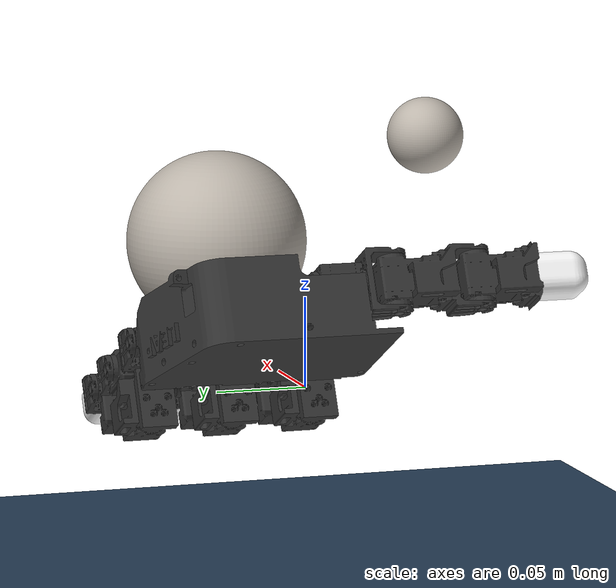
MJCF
<mujoco model="right_leap_hand scene">
  <include file="./leap_right_hand_eval.xml"/>

  <statistic center="0 0 0" extent="0.3"/>

  <visual>
    <rgba haze="0.15 0.25 0.35 1"/>
    <quality shadowsize="8192"/>
    <global azimuth="130" elevation="-40" offwidth="1280" offheight="960"/>
  </visual>

  <asset>
    <texture type="2d" name="ball_surface" file="./textures/softball_surface.png"/>
    <material name="obj_material" texture="ball_surface" texuniform="false"
      specular="0.3" shininess="0.4"/>
    <mesh name="ball_mesh" file="../../objects/uv_sphere.obj" scale="0.0485 0.0485 0.0485"/>
    <mesh name="ball_mesh_goal" file="../../objects/uv_sphere.obj" scale="0.0208 0.0208 0.0208"/>

    <texture type="2d" name="groundplane" builtin="checker" mark="edge" rgb1="0.2 0.3 0.4" rgb2="0.1 0.2 0.3"
      markrgb="0.8 0.8 0.8" width="300" height="300"/>
    <material name="groundplane" texture="groundplane" texuniform="true" texrepeat="5 5" reflectance="0."/>
  </asset>

  <worldbody>
    <light directional="true" ambient="0.2 0.2 0.2" diffuse="0.8 0.8 0.8"  castshadow="false" pos="0 1 4" dir="0 0 -1" name="light0"/>
    <camera name="demo-cam" pos="-0.003 -0.393 0.317" xyaxes="1.000 -0.000 0.000 0.000 0.462 0.887"/>

    <geom name="floor" pos="0 0 -0.1" size="0 0 0.05" type="plane" material="groundplane"/>

    <body name="goal" pos="0.005 -0.07 0.1353" quat="1 0 0 0" mocap="true">
      <geom name="goal_visual" type="mesh" mesh="ball_mesh_goal" material="obj_material"
        contype="0" conaffinity="0" density="0"/>
    </body>

    <body name="obj" pos="0 0.05 0.0835">
        <freejoint name="obj_joint"/>
        <geom name="obj" type="sphere" size="0.0485" material="obj_material"
              friction="0.5" mass="0.14" group="3"/>
        <!-- Visual-only textured sphere (contype/conaffinity 0, density 0). -->
        <geom name="obj_visual" type="mesh" mesh="ball_mesh" material="obj_material"
              contype="0" conaffinity="0" density="0"/>
    </body>

  </worldbody>
</mujoco>

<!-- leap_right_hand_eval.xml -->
<mujoco model="leap_rh">
  <compiler angle="radian" meshdir="./leap_hand/assets/"/>

  <!-- mesh assets -->
  <asset>
    <material name="black" rgba="0.2 0.2 0.2 1" />
    <material name="white" rgba="1 1 1 1" />

    <mesh name="palm" file="palm_right.obj"/>
    <mesh name="base" file="base.obj"/>
    <mesh name="proximal" file="proximal.obj"/>
    <mesh name="medial" file="medial.obj"/>
    <mesh name="distal" file="distal.obj"/>
    <mesh name="tip" file="tip.obj"/>
    <mesh name="thumb_base" file="thumb_base.obj"/>
    <mesh name="thumb_proximal" file="thumb_proximal.obj"/>
    <mesh name="thumb_distal" file="thumb_distal.obj"/>
    <mesh name="thumb_tip" file="thumb_tip.obj"/>
    <mesh name="tip_vis" file="tip_vis.obj"/>
    <mesh name="thumb_tip_vis" file="thumb_tip_vis.obj"/>
  </asset>

  <!-- defaults -->
  <default>
    <!-- constraint stiffness -->

    <!-- actuator defaults -->
    <position kp="3.0" kv="0.01" />
    <joint damping="0.3" armature="0.001"/>

    <!-- geom class defaults -->
    <default class="visual">
      <geom group="1" type="mesh" contype="0" conaffinity="0" density="0" material="black" />
    </default>
    <default class="collision">
      <geom material="black" group="3" />
    </default>
    <default class="tip">
      <geom type="mesh" mesh="tip" friction="0.5" material="white" group="3" />
    </default>
    <default class="thumb_tip">
      <geom type="mesh" mesh="thumb_tip" friction="0.5" material="white" group="3" />
    </default>
    <!-- Visual-only fingertip meshes: contype/conaffinity 0 + density 0 (never
    collide, carry no mass), group="1" so they render normally everywhere,
    matching the "visual" class convention above. -->
    <default class="tip_vis">
      <geom type="mesh" mesh="tip_vis" material="white" group="1" contype="0" conaffinity="0" density="0" />
    </default>
    <default class="thumb_tip_vis">
      <geom type="mesh" mesh="thumb_tip_vis" material="white" group="1" contype="0" conaffinity="0" density="0" />
    </default>

    <!-- joint class defaults -->
    <default class="mcp">
      <joint pos="0 0 0" axis="0 0 -1"
        limited="true" range="-0.0 2.23" />
      <position ctrlrange="-0.314 2.23" />
    </default>
    <default class="rot">
      <joint pos="0 0 0" axis="0 0 -1"
        limited="true" range="-1.047 1.047" />
      <position ctrlrange="-1.047 1.047" />
    </default>
    <default class="pip">
      <joint pos="0 0 0" axis="0 0 -1"
        limited="true" range="-0.506 1.885" />
      <position ctrlrange="-0.506 1.885" />
    </default>
    <default class="dip">
      <joint pos="0 0 0" axis="0 0 -1"
        limited="true" range="-0.366 2.042" />
      <position ctrlrange="-0.366 2.042" />
    </default>
    <default class="thumb_cmc">
      <joint pos="0 0 0" axis="0 0 -1"
        limited="true" range="-0.349 2.094" />
      <position ctrlrange="-0.349 2.094" />
    </default>
    <default class="thumb_axl">
      <joint pos="0 0 0" axis="0 0 -1"
        limited="true" range="-0.349 2.094" />
      <position ctrlrange="-0.349 2.094" />
    </default>
    <default class="thumb_mcp">
      <joint pos="0 0 0" axis="0 0 -1"
        limited="true" range="-0.47 2.443" />
      <position ctrlrange="-0.47 2.443" />
    </default>
    <default class="thumb_ipl">
      <joint pos="0 0 0" axis="0 0 -1"
        limited="true" range="-1.34 1.88" />
      <position ctrlrange="-1.34 1.88" />
    </default>
  </default>

  <!-- collision filtering -->
  <contact>
    <!-- filter the palm from all other finger bodies except the tips -->
    <exclude body1="palm" body2="if_bs" />
    <exclude body1="palm" body2="mf_bs" />
    <exclude body1="palm" body2="rf_bs" />
    <exclude body1="palm" body2="th_mp" />

    <exclude body1="palm" body2="if_px" />
    <exclude body1="palm" body2="mf_px" />
    <exclude body1="palm" body2="rf_px" />
    <exclude body1="palm" body2="th_bs" />

    <exclude body1="palm" body2="if_md" />
    <exclude body1="palm" body2="mf_md" />
    <exclude body1="palm" body2="rf_md" />
    <exclude body1="palm" body2="th_px" />

    <!-- none of the base fingertip geoms can touch each other -->
    <exclude body1="if_bs" body2="mf_bs" />
    <exclude body1="if_bs" body2="rf_bs" />
    <exclude body1="mf_bs" body2="rf_bs" />

    <exclude body1="th_mp" body2="if_bs" />
    <exclude body1="th_mp" body2="mf_bs" />
    <exclude body1="th_mp" body2="rf_bs" />
  </contact>

  <!-- actuators -->
  <actuator>
    <!-- index -->
    <position name="if_mcp_act" joint="if_mcp" class="mcp" />
    <position name="if_rot_act" joint="if_rot" class="rot" />
    <position name="if_pip_act" joint="if_pip" class="pip" />
    <position name="if_dip_act" joint="if_dip" class="dip" />

    <!-- middle -->
    <position name="mf_mcp_act" joint="mf_mcp" class="mcp" />
    <position name="mf_rot_act" joint="mf_rot" class="rot" />
    <position name="mf_pip_act" joint="mf_pip" class="pip" />
    <position name="mf_dip_act" joint="mf_dip" class="dip" />

    <!-- ring -->
    <position name="rf_mcp_act" joint="rf_mcp" class="mcp" />
    <position name="rf_rot_act" joint="rf_rot" class="rot" />
    <position name="rf_pip_act" joint="rf_pip" class="pip" />
    <position name="rf_dip_act" joint="rf_dip" class="dip" />

    <!-- thumb -->
    <position name="th_cmc_act" joint="th_cmc" class="thumb_cmc" />
    <position name="th_axl_act" joint="th_axl" class="thumb_axl" />
    <position name="th_mcp_act" joint="th_mcp" class="thumb_mcp" />
    <position name="th_ipl_act" joint="th_ipl" class="thumb_ipl" />
  </actuator>

  <!-- sensors -->
  <sensor>
    <!-- index -->
    <jointpos name="if_mcp_sensor" joint="if_mcp" />
    <jointpos name="if_rot_sensor" joint="if_rot" />
    <jointpos name="if_pip_sensor" joint="if_pip" />
    <jointpos name="if_dip_sensor" joint="if_dip" />

    <!-- middle -->
    <jointpos name="mf_mcp_sensor" joint="mf_mcp" />
    <jointpos name="mf_rot_sensor" joint="mf_rot" />
    <jointpos name="mf_pip_sensor" joint="mf_pip" />
    <jointpos name="mf_dip_sensor" joint="mf_dip" />

    <!-- ring -->
    <jointpos name="rf_mcp_sensor" joint="rf_mcp" />
    <jointpos name="rf_rot_sensor" joint="rf_rot" />
    <jointpos name="rf_pip_sensor" joint="rf_pip" />
    <jointpos name="rf_dip_sensor" joint="rf_dip" />

    <!-- thumb -->
    <jointpos name="th_cmc_sensor" joint="th_cmc" />
    <jointpos name="th_axl_sensor" joint="th_axl" />
    <jointpos name="th_mcp_sensor" joint="th_mcp" />
    <jointpos name="th_ipl_sensor" joint="th_ipl" />
  </sensor>

  <worldbody>
    <body name="palm" pos="0 0 0.01" quat="0 0.97236992  0 -0.23344536">
      <!-- palm -->
      <inertial pos="-0.049542 -0.042914 -0.010227" quat="0.565586 0.427629 -0.574956 0.408254" mass="0.237" diaginertia="0.000407345 0.000304759 0.000180736"/>
      <geom name="palm_visual" pos="-0.02 0.02575 -0.0347" quat="1 0 0 0" class="visual" mesh="palm"/>
      <geom name="palm_collision_1" size="0.011 0.013 0.017" pos="-0.009 0.008 -0.011" type="box" class="collision"/>
      <geom name="palm_collision_2" size="0.011 0.013 0.017" pos="-0.009 -0.037 -0.011" type="box" class="collision"/>
      <geom name="palm_collision_3" size="0.011 0.013 0.017" pos="-0.009 -0.082 -0.011" type="box" class="collision"/>
      <geom name="palm_collision_4" size="0.029 0.01 0.023" pos="-0.066 -0.078 -0.0115" quat="0.989016 0 0 -0.147806" type="box" class="collision"/>
      <geom name="palm_collision_5" size="0.01 0.06 0.015" pos="-0.03 -0.035 -0.003" type="box" class="collision"/>
      <geom name="palm_collision_6" size="0.005 0.06 0.01" pos="-0.032 -0.035 -0.024" quat="0.923956 0 0.382499 0" type="box" class="collision"/>
      <geom name="palm_collision_7" size="0.012 0.058 0.023" pos="-0.048 -0.033 -0.0115" type="box" class="collision"/>
      <geom name="palm_collision_8" size="0.022 0.026 0.023" pos="-0.078 -0.053 -0.0115" type="box" class="collision"/>
      <geom name="palm_collision_9" size="0.002 0.018 0.017" pos="-0.098 -0.009 -0.006" type="box" class="collision"/>
      <geom name="palm_collision_10" size="0.022 0.028 0.002" pos="-0.078 -0.003 0.01" type="box" class="collision"/>
      <site name="tag" pos="-0.067 -0.05 -0.035" rgba="0.5 0 0 0.8" quat="1 0 0 -1"/>

      <!-- index -->
        <body name="if_bs" pos="-0.007 0.023 -0.0187" quat="0.5 0.5 0.5 -0.5">
          <inertial pos="-0.022516 0.033882 0.016359" quat="0.388092 0.677951 -0.247713 0.573067"
            mass="0.044" diaginertia="1.74972e-05 1.61504e-05 7.21342e-06" />
          <joint name="if_mcp" class="mcp" />
          <geom name="if_bs_visual" pos="0.0084 0.0077 0.01465" quat="1 0 0 0" class="visual"
            mesh="base" />
          <geom name="if_bs_collision_1" size="0.01 0.003 0.017" pos="0 0.018 0.0147" type="box" class="collision" />
           <geom name="if_bs_collision_2" size="0.014 0.02 0.01" pos="-0.027 0.042 0.015"
          type="box" class="collision"/>
           <geom name="if_bs_collision_3" size="0.017 0.003 0.01" pos="-0.0262 0.02 0.0146"
          type="box" class="collision"/>
           <geom name="if_bs_collision_4" size="0.01 0.012 0.004" pos="-0.0295 0.035 0.029"
          type="box" class="collision"/>
           <geom name="if_bs_collision_5" size="0.007 0.01 0.002" pos="0 0.005 0.03"
          type="box" class="collision"/>
           <geom name="if_bs_collision_6" size="0.007 0.01 0.002" pos="0 0.005 -0.001"
          type="box" class="collision"/>

          <body name="if_px" pos="-0.0122 0.0381 0.0145" quat="0.500003 -0.5 -0.499997 0.5">
            <inertial pos="0.0075 -0.0002 -0.011" quat="0 0.707107 0 0.707107" mass="0.032"
              diaginertia="4.8853e-06 4.3733e-06 3.0933e-06" />
            <joint name="if_rot" class="rot" />
            <geom name="if_px_visual" pos="0.0096 0.0002 0.0007" quat="0.500003 -0.5 -0.5 -0.499997"
              class="visual" mesh="proximal" />
            <geom name="if_px_collision" size="0.017 0.013 0.011" pos="0.0075 -0.0002 -0.011"
              type="box" class="collision" />

            <body name="if_md" pos="0.015 0.0143 -0.013" quat="0.500003 0.5 -0.5 0.499997">
              <inertial pos="0.0054215 -0.029148 0.015" quat="0.687228 0.687228 0.166487 0.166487"
                mass="0.037" diaginertia="8.28004e-06 8.1598e-06 5.39516e-06" />
              <joint name="if_pip" class="pip" />
              <geom name="if_md_visual" pos="0.0211 -0.0084 0.0097" quat="2.67949e-08 -1 0 0"
                class="visual" mesh="medial" />
              <geom name="if_md_collision_1" size="0.008 0.003 0.013" pos="0 -0.02 0.015" type="box" class="collision" />
               <geom name="if_md_collision_2" size="0.01 0.002 0.017" pos="0 -0.016 0.015"
              type="box"  class="collision"/>
               <geom name="if_md_collision_3" size="0.007 0.01 0.002" pos="0 -0.0045 0.03"
              type="box" class="collision"/>
               <geom name="if_md_collision_4" size="0.007 0.01 0.002" pos="0 -0.0045 0"
              type="box" class="collision"/>
              <geom name="if_md_collision_5" size="0.017 0.011 0.013" pos="0.0075 -0.035 0.015"
                type="box" class="collision" />

              <body name="if_ds" pos="0 -0.0361 0.0002">
                <inertial pos="-0.0008794 -0.027019 0.014594"
                  quat="0.702905 0.710643 -0.0212937 -0.0214203" mass="0.016"
                  diaginertia="3.71863e-06 3.02396e-06 1.6518e-06" />
                <joint name="if_dip" class="dip" />
                <geom name="if_ds_visual" pos="0.0132 -0.0061 0.0144" quat="2.67949e-08 1 0 0"
                  class="visual" mesh="distal" />
                <geom name="if_ds_collision_1" size="0.01 0.003 0.015" pos="0 -0.017 0.015"
                  type="box" class="collision" />
                 <geom name="if_ds_collision_2" size="0.007 0.011 0.002" pos="0 -0.006 0.03"
                type="box"  class="collision"/>
                 <geom name="if_ds_collision_3" size="0.007 0.011 0.002" pos="0 -0.006 -0.001"
                type="box"  class="collision"/>

                <geom name="if_tip" class="tip" />
                <geom name="if_tip_vis" class="tip_vis" />
                <site name="if_tip" pos="0 -0.05 0.015" group="4"/>
              </body>

            </body>
          </body>
        </body>  <!--
        index -->

        <!-- middle -->
        <body name="mf_bs" pos="-0.0071 -0.0224 -0.0187" quat="0.500003 0.5 0.5 -0.499997">
          <inertial pos="-0.022516 0.033882 0.016359" quat="0.388092 0.677951 -0.247713 0.573067"
            mass="0.044" diaginertia="1.74972e-05 1.61504e-05 7.21342e-06" />
          <joint name="mf_mcp" class="mcp" />
          <geom name="mf_bs_visual" pos="0.0084 0.0077 0.01465" quat="1 0 0 0" class="visual"
            mesh="base" />
          <geom name="mf_bs_collision_1" size="0.01 0.003 0.017" pos="0 0.018 0.0147" type="box" class="collision" />
           <geom name="mf_bs_collision_2" size="0.014 0.02 0.01" pos="-0.027 0.042 0.015"
          type="box"  class="collision"/>
           <geom name="mf_bs_collision_3" size="0.017 0.003 0.01" pos="-0.0262 0.02 0.0146"
          type="box" class="collision"/>
           <geom name="mf_bs_collision_4" size="0.01 0.012 0.004" pos="-0.0295 0.035 0.029"
          type="box" class="collision"/>
           <geom name="mf_bs_collision_5" size="0.007 0.01 0.002" pos="0 0.005 0.03"
          type="box" class="collision"/>
           <geom name="mf_bs_collision_6" size="0.007 0.01 0.002" pos="0 0.005 -0.001"
          type="box" class="collision"/>

          <body name="mf_px" pos="-0.0122 0.0381 0.0145" quat="0.500003 -0.5 -0.499997 0.5">
            <inertial pos="0.0075 -0.0002 -0.011" quat="0 0.707107 0 0.707107" mass="0.032"
              diaginertia="4.8853e-06 4.3733e-06 3.0933e-06" />
            <joint name="mf_rot" class="rot" />
            <geom name="mf_px_visual" pos="0.0096 0.0003 0.0007" quat="0.500003 -0.5 -0.5 -0.499997"
              class="visual" mesh="proximal" />
            <geom name="mf_px_collision" size="0.017 0.013 0.011" pos="0.0075 -0.0002 -0.011"
              type="box" class="collision" />

            <body name="mf_md" pos="0.015 0.0143 -0.013" quat="0.500003 0.5 -0.5 0.499997">
              <inertial pos="0.0054215 -0.029148 0.015" quat="0.687228 0.687228 0.166487 0.166487"
                mass="0.037" diaginertia="8.28004e-06 8.1598e-06 5.39516e-06" />
              <joint name="mf_pip" class="pip" />
              <geom name="mf_md_visual" pos="0.0211 -0.0084 0.0097" quat="1.32679e-06 -1 0 0"
                class="visual" mesh="medial" />
              <geom name="mf_md_collision_1" size="0.008 0.003 0.013" pos="0 -0.02 0.015" type="box" class="collision" />
               <geom name="mf_md_collision_2" size="0.01 0.002 0.017" pos="0 -0.016 0.015"
              type="box"  class="collision"/>
               <geom name="mf_md_collision_3" size="0.007 0.01 0.002" pos="0 -0.0045 0.03"
              type="box"  class="collision"/>
               <geom name="mf_md_collision_4" size="0.007 0.01 0.002" pos="0 -0.0045 0"
              type="box"  class="collision"/>
              <geom name="mf_md_collision_5" size="0.017 0.011 0.013" pos="0.0075 -0.035 0.015"
                type="box" class="collision" />

              <body name="mf_ds" pos="0 -0.0361 0.0002">
                <inertial pos="-0.0008794 -0.027019 0.014594"
                  quat="0.702905 0.710643 -0.0212937 -0.0214203" mass="0.016"
                  diaginertia="3.71863e-06 3.02396e-06 1.6518e-06" />
                <joint name="mf_dip" class="dip" />
                <geom name="mf_ds_visual" pos="0.0132 -0.0061 0.0145" quat="1.32679e-06 1 0 0"
                  class="visual" mesh="distal" />
                <geom name="mf_ds_collision_1" size="0.01 0.003 0.015" pos="0 -0.017 0.015"
                  type="box" class="collision" />
                 <geom name="mf_ds_collision_2" size="0.007 0.011 0.002" pos="0 -0.006 0.03"
                type="box"  class="collision"/>
                 <geom name="mf_ds_collision_3" size="0.007 0.011 0.002" pos="0 -0.006 -0.001"
                type="box"  class="collision"/>

                <geom name="mf_tip" class="tip" />
                <geom name="mf_tip_vis" class="tip_vis" />
                <site name="mf_tip" pos="0 -0.05 0.015" group="4"/>
              </body>
            </body>
          </body>
        </body>  <!--
        middle -->

        <!-- ring -->
        <body name="rf_bs" pos="-0.00709 -0.0678 -0.0187" quat="0.500003 0.5 0.5 -0.499997">
          <inertial pos="-0.022516 0.033882 0.016359" quat="0.388092 0.677951 -0.247713 0.573067"
            mass="0.044" diaginertia="1.74972e-05 1.61504e-05 7.21342e-06" />
          <joint name="rf_mcp" class="mcp" />
          <geom name="rf_bs_visual" pos="0.0084 0.0077 0.01465" quat="1 0 0 0" class="visual"
            mesh="base" />
          <geom name="rf_bs_collision_1" size="0.01 0.003 0.017" pos="0 0.018 0.0147" type="box" class="collision" />
           <geom name="rf_bs_collision_2" size="0.014 0.02 0.01" pos="-0.027 0.042 0.015"
          type="box"  class="collision"/>
           <geom name="rf_bs_collision_3" size="0.017 0.003 0.01" pos="-0.0262 0.02 0.0146"
          type="box"  class="collision"/>
           <geom name="rf_bs_collision_4" size="0.01 0.012 0.004" pos="-0.0295 0.035 0.029"
          type="box"  class="collision"/>
           <geom name="rf_bs_collision_5" size="0.007 0.01 0.002" pos="0 0.005 0.03"
          type="box" class="collision"/>
           <geom name="rf_bs_collision_6" size="0.007 0.01 0.002" pos="0 0.005 -0.001"
          type="box" class="collision"/>

          <body name="rf_px" pos="-0.0122 0.0381 0.0145" quat="0.500003 -0.5 -0.499997 0.5">
            <inertial pos="0.0075 -0.0002 -0.011" quat="0 0.707107 0 0.707107" mass="0.032"
              diaginertia="4.8853e-06 4.3733e-06 3.0933e-06" />
            <joint name="rf_rot" class="rot" />
            <geom name="rf_px_visual" pos="0.0096 0.0003 0.0007" quat="0.500003 -0.5 -0.5 -0.499997"
              class="visual" mesh="proximal" />
            <geom name="rf_px_collision" size="0.017 0.013 0.011" pos="0.0075 -0.0002 -0.011"
              type="box" class="collision" />

            <body name="rf_md" pos="0.015 0.0143 -0.013" quat="0.500003 0.5 -0.5 0.499997">
              <inertial pos="0.0054215 -0.029148 0.015" quat="0.687228 0.687228 0.166487 0.166487"
                mass="0.037" diaginertia="8.28004e-06 8.1598e-06 5.39516e-06" />
              <joint name="rf_pip" class="pip" />
              <geom name="rf_md_visual" pos="0.0211 -0.0084 0.0097" quat="0 -1 0 0" class="visual"
                mesh="medial" />
              <geom name="rf_md_collision_1" size="0.008 0.003 0.013" pos="0 -0.02 0.015" type="box" class="collision" />
               <geom name="rf_md_collision_2" size="0.01 0.002 0.017" pos="0 -0.016 0.015"
              type="box" class="collision"/>
               <geom name="rf_md_collision_3" size="0.007 0.01 0.002" pos="0 -0.0045 0.03"
              type="box" class="collision"/>
               <geom name="rf_md_collision_4" size="0.007 0.01 0.002" pos="0 -0.0045 0"
              type="box" class="collision"/>
              <geom name="rf_md_collision_5" size="0.017 0.011 0.013" pos="0.0075 -0.035 0.015"
                type="box" class="collision" />

              <body name="rf_ds" pos="0 -0.03609 0.0002">
                <inertial pos="-0.0008794 -0.027019 0.014594"
                  quat="0.702905 0.710643 -0.0212937 -0.0214203" mass="0.016"
                  diaginertia="3.71863e-06 3.02396e-06 1.6518e-06" />
                <joint name="rf_dip" class="dip" />
                <geom name="rf_ds_visual" pos="0.0132 -0.0061 0.0145" quat="0 1 0 0" class="visual"
                  mesh="distal" />
                <geom name="rf_ds_collision_1" size="0.01 0.003 0.015" pos="0 -0.017 0.015"
                  type="box" class="collision" />
                 <geom name="rf_ds_collision_2" size="0.007 0.011 0.002" pos="0 -0.006 0.03"
                type="box" class="collision"/>
                 <geom name="rf_ds_collision_3" size="0.007 0.011 0.002" pos="0 -0.006 -0.001"
                type="box" class="collision"/>

                <geom name="rf_tip" class="tip" />
                <geom name="rf_tip_vis" class="tip_vis" />
                <site name="rf_tip" pos="0 -0.05 0.015" group="4"/>
              </body>
            </body>
          </body>
        </body>  <!--
        ring -->

        <!-- thumb -->
        <body name="th_mp" pos="-0.0693 -0.0012 -0.0216" quat="0.707109 0 0.707105 0">
          <inertial pos="0.0075 -0.0002 -0.011" quat="0 0.707107 0 0.707107" mass="0.032"
            diaginertia="4.8853e-06 4.3733e-06 3.0933e-06" />
          <joint name="th_cmc" class="thumb_cmc" />
          <geom name="th_mp_visual" pos="-0.0053 0.0003 0.00078" quat="0.500003 -0.5 -0.5 -0.499997"
            class="visual" mesh="proximal" />
          <geom name="th_mp_collision" size="0.017 0.013 0.011" pos="-0.0075 -0.0002 -0.011"
            type="box" class="collision" />

          <body name="th_bs" pos="0 0.0143 -0.013" quat="0.500003 0.5 -0.5 0.499997">
            <inertial pos="0 0 -0.0070806" quat="0.707107 0.707107 0 0" mass="0.003"
              diaginertia="6.1932e-07 5.351e-07 2.1516e-07" />
            <joint name="th_axl" class="thumb_axl" />
            <geom name="th_bs_visual" pos="0.01196 0 -0.0158" quat="0.707109 0.707105 0 0"
              type="mesh" mesh="thumb_base" class="visual" />
            <geom name="th_bs_collision_2" size="0.009 0.0165 0.002" pos="0 0 -0.0015"
              type="box" class="collision"/>
            <geom name="th_bs_collision_3" size="0.007 0.002 0.01" pos="0 -0.015 -0.013" type="box"  class="collision"/>
            <geom name="th_bs_collision_4" size="0.007 0.002 0.01" pos="0 0.015 -0.013" type="box"  class="collision"/>

            <body name="th_px" pos="0 0.0145 -0.017" quat="0.707109 -0.707105 0 0">
              <inertial pos="-0.0020593 0.015912 -0.013733"
                quat="0.698518 0.697382 -0.104933 0.121324" mass="0.038"
                diaginertia="9.87104e-06 9.32653e-06 4.36203e-06" />
              <joint name="th_mcp" class="thumb_mcp" />
              <geom name="th_px_visual" pos="0.0439 0.0579 -0.0086" quat="1 0 0 0" class="visual"
                mesh="thumb_proximal" />
              <geom name="th_px_collision_1" size="0.01 0.02 0.012" pos="0 0.0105 -0.014" type="box" class="collision" />
               <geom name="th_px_collision_2" size="0.01 0.002 0.016" pos="0 0.031 -0.015"
              type="box" class="collision"/>
               <geom name="th_px_collision_3" size="0.007 0.01 0.002" pos="0 0.042 0.001"
              type="box" class="collision"/>
               <geom name="th_px_collision_4" size="0.007 0.01 0.002" pos="0 0.042 -0.029"
              type="box" class="collision"/>
               <geom name="th_px_collision_5" size="0.005 0.012 0.009" pos="-0.0135 0.0175
              -0.011656" type="box" class="collision"/>

              <body name="th_ds" pos="0 0.0466 0.0002" quat="1.32679e-06 0 0 1">
                <inertial pos="0.00096191 -0.024203 -0.014419"
                  quat="0.35287 0.311272 -0.632839 0.614904" mass="0.049"
                  diaginertia="2.08591e-05 2.0402e-05 4.71335e-06" />
                <joint name="th_ipl" class="thumb_ipl" />
                <geom name="th_ds_visual" pos="0.0625 0.0784 0.0489" quat="1 0 0 0" class="visual"
                  mesh="thumb_distal" />
                <geom name="th_ds_collision_1" size="0.01 0.018 0.012" pos="0 -0.0085 -0.015"
                  type="box" class="collision" />
                 <geom name="th_ds_collision_2" size="0.01 0.002 0.015" pos="0 -0.029 -0.014"
                type="box" class="collision"/>
                 <geom name="th_ds_collision_3" size="0.004 0.012 0.009" pos="0.015 -0.0175
                -0.0115" type="box" class="collision"/>

                <geom name="th_tip" class="thumb_tip" />
                <geom name="th_tip_vis" class="thumb_tip_vis" />
                <site name="th_tip" pos="0 -0.06 -0.015" group="4"/>
              </body>
            </body>
          </body>
        </body>  <!--
        thumb -->

    </body>  <!-- palm -->
  </worldbody>
</mujoco>
